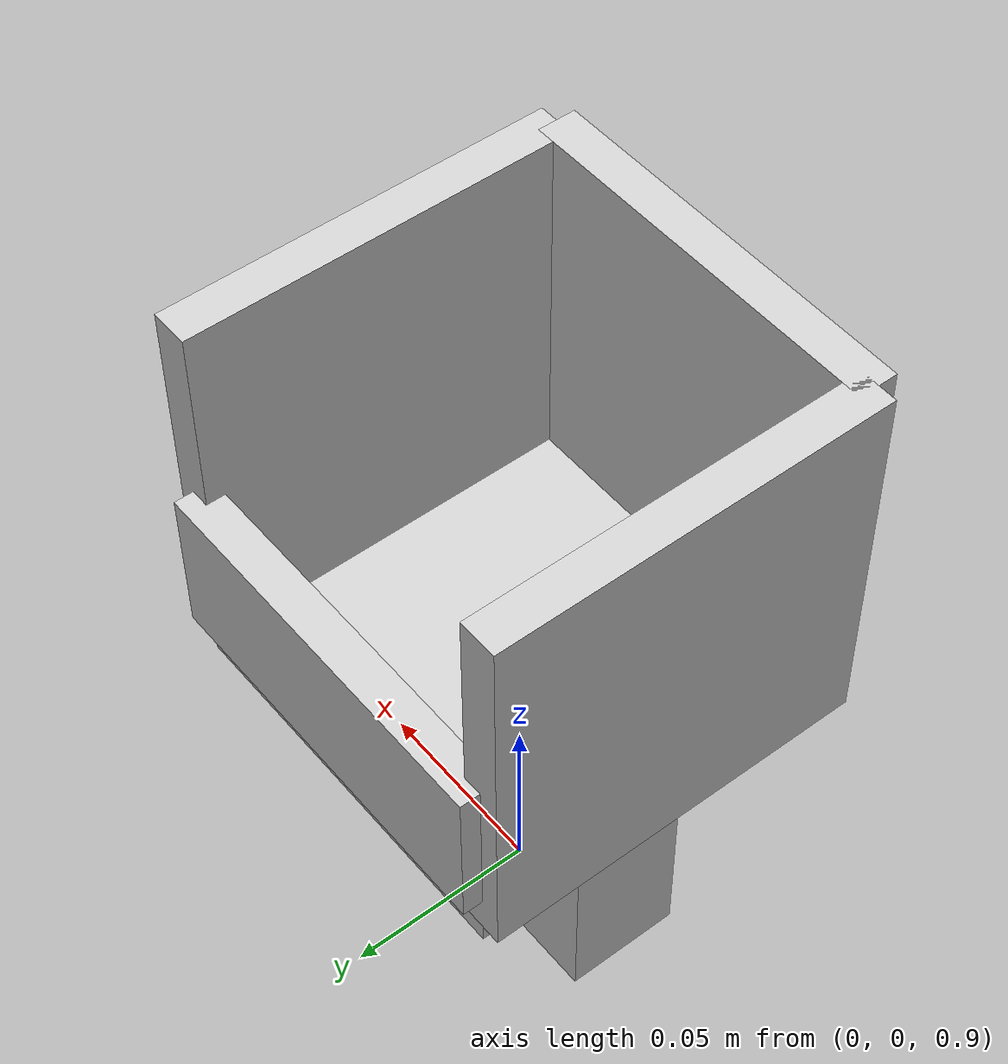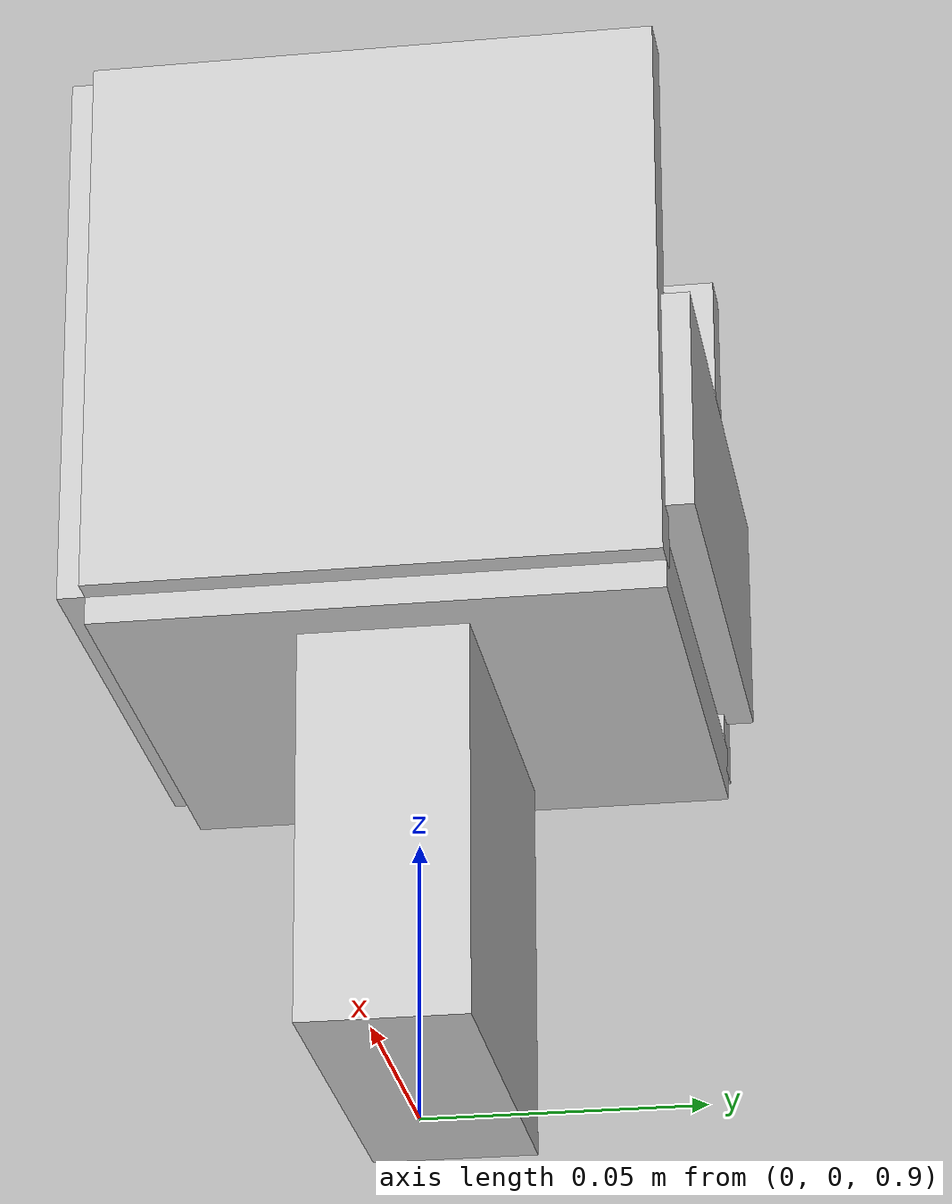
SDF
<?xml version="1.0"?>
<sdf version="1.7">
  <model name="bucket">
    <frame name="bucket_handle">
      <pose relative_to="bucket">0 0 -0.04 1.5708 0 1.5708</pose>
    </frame>

    <link name="bucket">
      <inertial>
        <mass>0.025</mass>
        <inertia>
          <ixx>0.15</ixx>
          <ixy>0</ixy>
          <ixz>0</ixz>
          <iyy>0.15</iyy>
          <iyz>0</iyz>
          <izz>0.15</izz>
        </inertia>
      </inertial>

      <!-- Bottom of bucket -->
      <collision name="bucket_bottom_collision">
        <pose>0 0 0.0 0 0 0</pose>
        <geometry>
          <box>
            <size>0.10 0.10 0.01</size>
          </box>
        </geometry>
        <surface>
          <friction>
            <ode/>
          </friction>
        </surface>
      </collision>

      <visual name="bucket_bottom_visual">
        <pose>0 0 0.0 0 0 0</pose>
        <geometry>
          <box>
            <size>0.10 0.10 0.01</size>
          </box>
        </geometry>
        <material>
          <diffuse>0.8 0.8 0.8 1.0</diffuse>
        </material>
      </visual>

      <!-- Front wall -->
      <collision name="bucket_front_collision">
        <pose>0.05 0 0.05 0 0 0</pose>
        <geometry>
          <box>
            <size>0.01 0.10 0.10</size>
          </box>
        </geometry>
        <surface>
          <friction>
            <ode/>
          </friction>
        </surface>
      </collision>

      <visual name="bucket_front_visual">
        <pose>0.05 0 0.05 0 0 0</pose>
        <geometry>
          <box>
            <size>0.01 0.10 0.10</size>
          </box>
        </geometry>
        <material>
          <diffuse>0.8 0.8 0.8 1.0</diffuse>
        </material>
      </visual>

      <!-- Back wall -->
      <collision name="bucket_back_collision">
        <pose>-0.05 0 0.05 0 0 0</pose>
        <geometry>
          <box>
            <size>0.01 0.10 0.10</size>
          </box>
        </geometry>
        <surface>
          <friction>
            <ode/>
          </friction>
        </surface>
      </collision>

      <visual name="bucket_back_visual">
        <pose>-0.05 0 0.05 0 0 0</pose>
        <geometry>
          <box>
            <size>0.01 0.10 0.10</size>
          </box>
        </geometry>
        <material>
          <diffuse>0.8 0.8 0.8 1.0</diffuse>
        </material>
      </visual>

      <!-- Left wall -->
      <collision name="bucket_left_collision">
        <pose>0 0.05 0.03 0 0 0</pose>
        <geometry>
          <box>
            <size>0.10 0.01 0.04</size>
          </box>
        </geometry>
        <surface>
          <friction>
            <ode/>
          </friction>
        </surface>
      </collision>

      <visual name="bucket_left_visual">
        <pose>0 0.05 0.03 0 0 0</pose>
        <geometry>
          <box>
            <size>0.10 0.01 0.04</size>
          </box>
        </geometry>
        <material>
          <diffuse>0.8 0.8 0.8 1.0</diffuse>
        </material>
      </visual>

      <!-- Right wall -->
      <collision name="bucket_right_collision">
        <pose>0 -0.05 0.05 0 0 0</pose>
        <geometry>
          <box>
            <size>0.10 0.01 0.10</size>
          </box>
        </geometry>
        <surface>
          <friction>
            <ode/>
          </friction>
        </surface>
      </collision>

      <visual name="bucket_right_visual">
        <pose>0 -0.05 0.05 0 0 0</pose>
        <geometry>
          <box>
            <size>0.10 0.01 0.10</size>
          </box>
        </geometry>
        <material>
          <diffuse>0.8 0.8 0.8 1.0</diffuse>
        </material>
      </visual>

      <collision name="handle_collision">
        <pose relative_to="bucket_handle">0 0 0 0 0 0</pose>
        <geometry>
            <box>
              <size>0.03 0.07 0.08</size>
            </box>
            </geometry>
            <surface>
              <friction>
                <ode>
                  <mu>1.5</mu>
                  <mu2>1.5</mu2>
                </ode>
              </friction>
            </surface>
      </collision>

      <visual name="handle_visual">
        <pose relative_to="bucket_handle">0 0 0 0 0 0</pose>
        <geometry>
          <box>
              <size>0.03 0.07 0.08</size>
          </box>
        </geometry>
        <material>
          <diffuse>0.8 0.8 0.8 1.0</diffuse>
        </material>
      </visual>
    </link>

    <pose>0 0 0.98 0 0 0</pose>
  </model>
</sdf>
